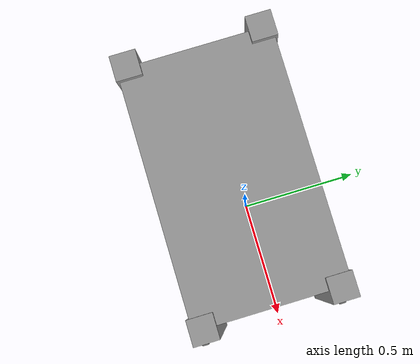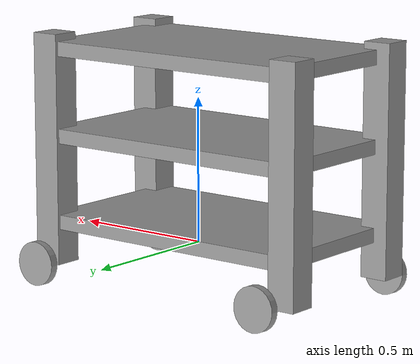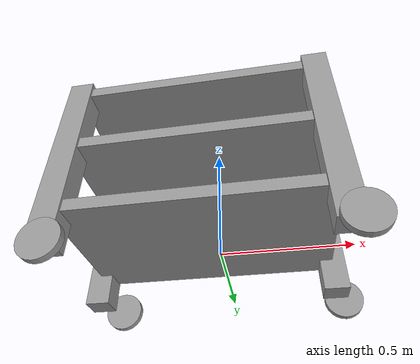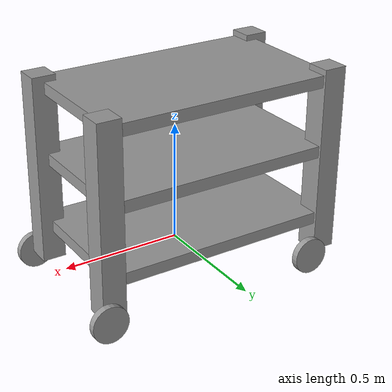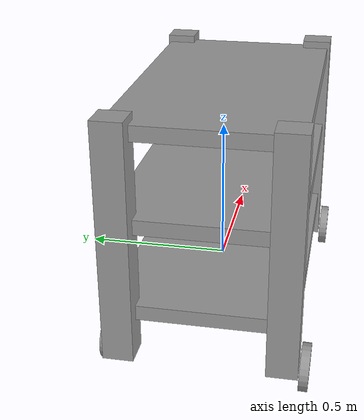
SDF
<?xml version='1.0'?>
<sdf version='1.6'>
  <model name='ER_cart6'>
    <link name='link_0_clone'>
      <pose frame=''>-0.060175 -0.026134 0.361383 0 -0 0</pose>
      <inertial>
        <mass>1</mass>
        <inertia>
          <ixx>0.166667</ixx>
          <ixy>0</ixy>
          <ixz>0</ixz>
          <iyy>0.166667</iyy>
          <iyz>0</iyz>
          <izz>0.166667</izz>
        </inertia>
        <pose frame=''>0 0 0 0 -0 0</pose>
      </inertial>
      <self_collide>0</self_collide>
      <kinematic>0</kinematic>
      <visual name='visual'>
        <pose frame=''>0 0 0.3 0 -0 0</pose>
        <geometry>
          <box>
            <size>1 0.6 0.05</size>
          </box>
        </geometry>
        <material>
          <lighting>1</lighting>
          <script>
            <uri>file://media/materials/scripts/gazebo.material</uri>
            <name>Gazebo/Grey</name>
          </script>
          <shader type='pixel'>
            <normal_map>__default__</normal_map>
          </shader>
          <ambient>0.3 0.3 0.3 1</ambient>
          <diffuse>0.7 0.7 0.7 1</diffuse>
          <specular>0.01 0.01 0.01 1</specular>
          <emissive>0 0 0 1</emissive>
        </material>
        <transparency>0</transparency>
        <cast_shadows>1</cast_shadows>
      </visual>
      <visual name='visual_5'>
        <pose frame=''>-0.5 -0.26 -0.05 0 -0 0</pose>
        <geometry>
          <box>
            <size>0.1 0.1 0.8</size>
          </box>
        </geometry>
        <material>
          <lighting>1</lighting>
          <script>
            <uri>file://media/materials/scripts/gazebo.material</uri>
            <name>Gazebo/Grey</name>
          </script>
          <shader type='pixel'>
            <normal_map>__default__</normal_map>
          </shader>
          <ambient>0.3 0.3 0.3 1</ambient>
          <diffuse>0.7 0.7 0.7 1</diffuse>
          <specular>0.01 0.01 0.01 1</specular>
          <emissive>0 0 0 1</emissive>
        </material>
        <transparency>0</transparency>
        <cast_shadows>1</cast_shadows>
      </visual>
      <visual name='visual_6'>
        <pose frame=''>-0.5 0.26 -0.05 0 -0 0</pose>
        <geometry>
          <box>
            <size>0.1 0.1 0.8</size>
          </box>
        </geometry>
        <material>
          <lighting>1</lighting>
          <script>
            <uri>file://media/materials/scripts/gazebo.material</uri>
            <name>Gazebo/Grey</name>
          </script>
          <shader type='pixel'>
            <normal_map>__default__</normal_map>
          </shader>
          <ambient>0.3 0.3 0.3 1</ambient>
          <diffuse>0.7 0.7 0.7 1</diffuse>
          <specular>0.01 0.01 0.01 1</specular>
          <emissive>0 0 0 1</emissive>
        </material>
        <transparency>0</transparency>
        <cast_shadows>1</cast_shadows>
      </visual>
      <visual name='visual_4'>
        <pose frame=''>0.5 -0.26 -0.05 0 -0 0</pose>
        <geometry>
          <box>
            <size>0.1 0.1 0.8</size>
          </box>
        </geometry>
        <material>
          <lighting>1</lighting>
          <script>
            <uri>file://media/materials/scripts/gazebo.material</uri>
            <name>Gazebo/Grey</name>
          </script>
          <shader type='pixel'>
            <normal_map>__default__</normal_map>
          </shader>
          <ambient>0.3 0.3 0.3 1</ambient>
          <diffuse>0.7 0.7 0.7 1</diffuse>
          <specular>0.01 0.01 0.01 1</specular>
          <emissive>0 0 0 1</emissive>
        </material>
        <transparency>0</transparency>
        <cast_shadows>1</cast_shadows>
      </visual>
      <visual name='visual_3'>
        <pose frame=''>0.5 0.26 -0.05 0 -0 0</pose>
        <geometry>
          <box>
            <size>0.1 0.1 0.8</size>
          </box>
        </geometry>
        <material>
          <lighting>1</lighting>
          <script>
            <uri>file://media/materials/scripts/gazebo.material</uri>
            <name>Gazebo/Grey</name>
          </script>
          <shader type='pixel'>
            <normal_map>__default__</normal_map>
          </shader>
          <ambient>0.3 0.3 0.3 1</ambient>
          <diffuse>0.7 0.7 0.7 1</diffuse>
          <specular>0.01 0.01 0.01 1</specular>
          <emissive>0 0 0 1</emissive>
        </material>
        <transparency>0</transparency>
        <cast_shadows>1</cast_shadows>
      </visual>
      <visual name='visual_1'>
        <pose frame=''>0 0 0 0 -0 0</pose>
        <geometry>
          <box>
            <size>1 0.6 0.05</size>
          </box>
        </geometry>
        <material>
          <lighting>1</lighting>
          <script>
            <uri>file://media/materials/scripts/gazebo.material</uri>
            <name>Gazebo/Grey</name>
          </script>
          <shader type='pixel'>
            <normal_map>__default__</normal_map>
          </shader>
          <ambient>0.3 0.3 0.3 1</ambient>
          <diffuse>0.7 0.7 0.7 1</diffuse>
          <specular>0.01 0.01 0.01 1</specular>
          <emissive>0 0 0 1</emissive>
        </material>
        <transparency>0</transparency>
        <cast_shadows>1</cast_shadows>
      </visual>
      <visual name='visual_2'>
        <pose frame=''>0 0 -0.3 0 -0 0</pose>
        <geometry>
          <box>
            <size>1 0.6 0.05</size>
          </box>
        </geometry>
        <material>
          <lighting>1</lighting>
          <script>
            <uri>file://media/materials/scripts/gazebo.material</uri>
            <name>Gazebo/Grey</name>
          </script>
          <shader type='pixel'>
            <normal_map>__default__</normal_map>
          </shader>
          <ambient>0.3 0.3 0.3 1</ambient>
          <diffuse>0.7 0.7 0.7 1</diffuse>
          <specular>0.01 0.01 0.01 1</specular>
          <emissive>0 0 0 1</emissive>
        </material>
        <transparency>0</transparency>
        <cast_shadows>1</cast_shadows>
      </visual>
      <collision name='collision'>
        <laser_retro>0</laser_retro>
        <max_contacts>10</max_contacts>
        <pose frame=''>0 0 -0.05 0 -0 0</pose>
        <geometry>
          <box>
            <size>1 0.6 0.8</size>
          </box>
        </geometry>
        <surface>
          <friction>
            <ode>
              <mu>1</mu>
              <mu2>1</mu2>
              <fdir1>0 0 0</fdir1>
              <slip1>0</slip1>
              <slip2>0</slip2>
            </ode>
            <torsional>
              <coefficient>1</coefficient>
              <patch_radius>0</patch_radius>
              <surface_radius>0</surface_radius>
              <use_patch_radius>1</use_patch_radius>
              <ode>
                <slip>0</slip>
              </ode>
            </torsional>
          </friction>
          <bounce>
            <restitution_coefficient>0</restitution_coefficient>
            <threshold>1e+06</threshold>
          </bounce>
          <contact>
            <collide_without_contact>0</collide_without_contact>
            <collide_without_contact_bitmask>1</collide_without_contact_bitmask>
            <collide_bitmask>1</collide_bitmask>
            <ode>
              <soft_cfm>0</soft_cfm>
              <soft_erp>0.2</soft_erp>
              <kp>1e+13</kp>
              <kd>1</kd>
              <max_vel>0.01</max_vel>
              <min_depth>0</min_depth>
            </ode>
            <bullet>
              <split_impulse>1</split_impulse>
              <split_impulse_penetration_threshold>-0.01</split_impulse_penetration_threshold>
              <soft_cfm>0</soft_cfm>
              <soft_erp>0.2</soft_erp>
              <kp>1e+13</kp>
              <kd>1</kd>
            </bullet>
          </contact>
        </surface>
      </collision>
    </link>
    <link name='link_2_clone'>
      <pose frame=''>0.473113 0.2994 -0.09134 -1.54173 0 0</pose>
      <inertial>
        <mass>0.000687654</mass>
        <inertia>
          <ixx>1.06476e-06</ixx>
          <ixy>0</ixy>
          <ixz>0</ixz>
          <iyy>1.06476e-06</iyy>
          <iyz>0</iyz>
          <izz>2.03255e-06</izz>
        </inertia>
        <pose frame=''>0 0 0 0 -0 0</pose>
      </inertial>
      <self_collide>0</self_collide>
      <kinematic>0</kinematic>
      <visual name='visual'>
        <pose frame=''>0 0 0 0 -0 0</pose>
        <geometry>
          <cylinder>
            <radius>0.0768867</radius>
            <length>0.0290866</length>
          </cylinder>
        </geometry>
        <material>
          <lighting>1</lighting>
          <script>
            <uri>file://media/materials/scripts/gazebo.material</uri>
            <name>Gazebo/Grey</name>
          </script>
          <shader type='pixel'>
            <normal_map>__default__</normal_map>
          </shader>
          <ambient>0.3 0.3 0.3 1</ambient>
          <diffuse>0.7 0.7 0.7 1</diffuse>
          <specular>0.01 0.01 0.01 1</specular>
          <emissive>0 0 0 1</emissive>
        </material>
        <transparency>0</transparency>
        <cast_shadows>1</cast_shadows>
      </visual>
      <collision name='collision'>
        <laser_retro>0</laser_retro>
        <max_contacts>10</max_contacts>
        <pose frame=''>0 0 0 0 -0 0</pose>
        <geometry>
          <cylinder>
            <radius>0.076887</radius>
            <length>0.029087</length>
          </cylinder>
        </geometry>
        <surface>
          <friction>
            <ode>
              <mu>1</mu>
              <mu2>1</mu2>
              <fdir1>0 0 0</fdir1>
              <slip1>0</slip1>
              <slip2>0</slip2>
            </ode>
            <torsional>
              <coefficient>1</coefficient>
              <patch_radius>0</patch_radius>
              <surface_radius>0</surface_radius>
              <use_patch_radius>1</use_patch_radius>
              <ode>
                <slip>0</slip>
              </ode>
            </torsional>
          </friction>
          <bounce>
            <restitution_coefficient>0</restitution_coefficient>
            <threshold>1e+06</threshold>
          </bounce>
          <contact>
            <collide_without_contact>0</collide_without_contact>
            <collide_without_contact_bitmask>1</collide_without_contact_bitmask>
            <collide_bitmask>1</collide_bitmask>
            <ode>
              <soft_cfm>0</soft_cfm>
              <soft_erp>0.2</soft_erp>
              <kp>1e+13</kp>
              <kd>1</kd>
              <max_vel>0.01</max_vel>
              <min_depth>0</min_depth>
            </ode>
            <bullet>
              <split_impulse>1</split_impulse>
              <split_impulse_penetration_threshold>-0.01</split_impulse_penetration_threshold>
              <soft_cfm>0</soft_cfm>
              <soft_erp>0.2</soft_erp>
              <kp>1e+13</kp>
              <kd>1</kd>
            </bullet>
          </contact>
        </surface>
      </collision>
    </link>
    <link name='link_2_clone_clone_0'>
      <pose frame=''>-0.473113 0.2994 -0.09134 -1.54173 0 0</pose>
      <inertial>
        <mass>0.000687654</mass>
        <inertia>
          <ixx>1.06476e-06</ixx>
          <ixy>0</ixy>
          <ixz>0</ixz>
          <iyy>1.06476e-06</iyy>
          <iyz>0</iyz>
          <izz>2.03255e-06</izz>
        </inertia>
        <pose frame=''>0 0 0 0 -0 0</pose>
      </inertial>
      <self_collide>0</self_collide>
      <kinematic>0</kinematic>
      <visual name='visual'>
        <pose frame=''>0 0 0 0 -0 0</pose>
        <geometry>
          <cylinder>
            <radius>0.0768867</radius>
            <length>0.0290866</length>
          </cylinder>
        </geometry>
        <material>
          <lighting>1</lighting>
          <script>
            <uri>file://media/materials/scripts/gazebo.material</uri>
            <name>Gazebo/Grey</name>
          </script>
          <shader type='pixel'>
            <normal_map>__default__</normal_map>
          </shader>
          <ambient>0.3 0.3 0.3 1</ambient>
          <diffuse>0.7 0.7 0.7 1</diffuse>
          <specular>0.01 0.01 0.01 1</specular>
          <emissive>0 0 0 1</emissive>
        </material>
        <transparency>0</transparency>
        <cast_shadows>1</cast_shadows>
      </visual>
      <collision name='collision'>
        <laser_retro>0</laser_retro>
        <max_contacts>10</max_contacts>
        <pose frame=''>0 0 0 0 -0 0</pose>
        <geometry>
          <cylinder>
            <radius>0.076887</radius>
            <length>0.029087</length>
          </cylinder>
        </geometry>
        <surface>
          <friction>
            <ode>
              <mu>1</mu>
              <mu2>1</mu2>
              <fdir1>0 0 0</fdir1>
              <slip1>0</slip1>
              <slip2>0</slip2>
            </ode>
            <torsional>
              <coefficient>1</coefficient>
              <patch_radius>0</patch_radius>
              <surface_radius>0</surface_radius>
              <use_patch_radius>1</use_patch_radius>
              <ode>
                <slip>0</slip>
              </ode>
            </torsional>
          </friction>
          <bounce>
            <restitution_coefficient>0</restitution_coefficient>
            <threshold>1e+06</threshold>
          </bounce>
          <contact>
            <collide_without_contact>0</collide_without_contact>
            <collide_without_contact_bitmask>1</collide_without_contact_bitmask>
            <collide_bitmask>1</collide_bitmask>
            <ode>
              <soft_cfm>0</soft_cfm>
              <soft_erp>0.2</soft_erp>
              <kp>1e+13</kp>
              <kd>1</kd>
              <max_vel>0.01</max_vel>
              <min_depth>0</min_depth>
            </ode>
            <bullet>
              <split_impulse>1</split_impulse>
              <split_impulse_penetration_threshold>-0.01</split_impulse_penetration_threshold>
              <soft_cfm>0</soft_cfm>
              <soft_erp>0.2</soft_erp>
              <kp>1e+13</kp>
              <kd>1</kd>
            </bullet>
          </contact>
        </surface>
      </collision>
    </link>
    <link name='link_2_clone_clone_1'>
      <pose frame=''>0.473113 -0.354144 -0.09134 -1.54173 0 0</pose>
      <inertial>
        <mass>0.00068765</mass>
        <inertia>
          <ixx>1.06e-06</ixx>
          <ixy>0</ixy>
          <ixz>0</ixz>
          <iyy>1.06e-06</iyy>
          <iyz>0</iyz>
          <izz>2.03e-06</izz>
        </inertia>
        <pose frame=''>0 0 0 0 -0 0</pose>
      </inertial>
      <self_collide>0</self_collide>
      <kinematic>0</kinematic>
      <gravity>1</gravity>
      <visual name='visual'>
        <pose frame=''>0 0 0 0 -0 0</pose>
        <geometry>
          <cylinder>
            <radius>0.0768867</radius>
            <length>0.0290866</length>
          </cylinder>
        </geometry>
        <material>
          <lighting>1</lighting>
          <script>
            <uri>file://media/materials/scripts/gazebo.material</uri>
            <name>Gazebo/Grey</name>
          </script>
          <shader type='pixel'>
            <normal_map>__default__</normal_map>
          </shader>
          <ambient>0.3 0.3 0.3 1</ambient>
          <diffuse>0.7 0.7 0.7 1</diffuse>
          <specular>0.01 0.01 0.01 1</specular>
          <emissive>0 0 0 1</emissive>
        </material>
        <transparency>0</transparency>
        <cast_shadows>1</cast_shadows>
      </visual>
      <collision name='collision'>
        <laser_retro>0</laser_retro>
        <max_contacts>10</max_contacts>
        <pose frame=''>0 0 0 0 -0 0</pose>
        <geometry>
          <cylinder>
            <radius>0.076887</radius>
            <length>0.029087</length>
          </cylinder>
        </geometry>
        <surface>
          <friction>
            <ode>
              <mu>1</mu>
              <mu2>1</mu2>
              <fdir1>0 0 0</fdir1>
              <slip1>0</slip1>
              <slip2>0</slip2>
            </ode>
            <torsional>
              <coefficient>1</coefficient>
              <patch_radius>0</patch_radius>
              <surface_radius>0</surface_radius>
              <use_patch_radius>1</use_patch_radius>
              <ode>
                <slip>0</slip>
              </ode>
            </torsional>
          </friction>
          <bounce>
            <restitution_coefficient>0</restitution_coefficient>
            <threshold>1e+06</threshold>
          </bounce>
          <contact>
            <collide_without_contact>0</collide_without_contact>
            <collide_without_contact_bitmask>1</collide_without_contact_bitmask>
            <collide_bitmask>1</collide_bitmask>
            <ode>
              <soft_cfm>0</soft_cfm>
              <soft_erp>0.2</soft_erp>
              <kp>1e+13</kp>
              <kd>1</kd>
              <max_vel>0.01</max_vel>
              <min_depth>0</min_depth>
            </ode>
            <bullet>
              <split_impulse>1</split_impulse>
              <split_impulse_penetration_threshold>-0.01</split_impulse_penetration_threshold>
              <soft_cfm>0</soft_cfm>
              <soft_erp>0.2</soft_erp>
              <kp>1e+13</kp>
              <kd>1</kd>
            </bullet>
          </contact>
        </surface>
      </collision>
    </link>
    <link name='link_2_clone_clone_clone'>
      <pose frame=''>-0.533288 -0.352906 -0.09134 -1.54173 0 0</pose>
      <inertial>
        <mass>0.00068765</mass>
        <inertia>
          <ixx>1.06e-06</ixx>
          <ixy>0</ixy>
          <ixz>0</ixz>
          <iyy>1.06e-06</iyy>
          <iyz>0</iyz>
          <izz>2.03e-06</izz>
        </inertia>
        <pose frame=''>0 0 0 0 -0 0</pose>
      </inertial>
      <self_collide>0</self_collide>
      <kinematic>0</kinematic>
      <visual name='visual'>
        <pose frame=''>0 0 0 0 -0 0</pose>
        <geometry>
          <cylinder>
            <radius>0.0768867</radius>
            <length>0.0290866</length>
          </cylinder>
        </geometry>
        <material>
          <lighting>1</lighting>
          <script>
            <uri>file://media/materials/scripts/gazebo.material</uri>
            <name>Gazebo/Grey</name>
          </script>
          <shader type='pixel'>
            <normal_map>__default__</normal_map>
          </shader>
          <ambient>0.3 0.3 0.3 1</ambient>
          <diffuse>0.7 0.7 0.7 1</diffuse>
          <specular>0.01 0.01 0.01 1</specular>
          <emissive>0 0 0 1</emissive>
        </material>
        <transparency>0</transparency>
        <cast_shadows>1</cast_shadows>
      </visual>
      <collision name='collision'>
        <laser_retro>0</laser_retro>
        <max_contacts>10</max_contacts>
        <pose frame=''>0 0 0 0 -0 0</pose>
        <geometry>
          <cylinder>
            <radius>0.076887</radius>
            <length>0.029087</length>
          </cylinder>
        </geometry>
        <surface>
          <friction>
            <ode>
              <mu>1</mu>
              <mu2>1</mu2>
              <fdir1>0 0 0</fdir1>
              <slip1>0</slip1>
              <slip2>0</slip2>
            </ode>
            <torsional>
              <coefficient>1</coefficient>
              <patch_radius>0</patch_radius>
              <surface_radius>0</surface_radius>
              <use_patch_radius>1</use_patch_radius>
              <ode>
                <slip>0</slip>
              </ode>
            </torsional>
          </friction>
          <bounce>
            <restitution_coefficient>0</restitution_coefficient>
            <threshold>1e+06</threshold>
          </bounce>
          <contact>
            <collide_without_contact>0</collide_without_contact>
            <collide_without_contact_bitmask>1</collide_without_contact_bitmask>
            <collide_bitmask>1</collide_bitmask>
            <ode>
              <soft_cfm>0</soft_cfm>
              <soft_erp>0.2</soft_erp>
              <kp>1e+13</kp>
              <kd>1</kd>
              <max_vel>0.01</max_vel>
              <min_depth>0</min_depth>
            </ode>
            <bullet>
              <split_impulse>1</split_impulse>
              <split_impulse_penetration_threshold>-0.01</split_impulse_penetration_threshold>
              <soft_cfm>0</soft_cfm>
              <soft_erp>0.2</soft_erp>
              <kp>1e+13</kp>
              <kd>1</kd>
            </bullet>
          </contact>
        </surface>
      </collision>
    </link>
    <joint name='link_0_clone_JOINT_2' type='revolute'>
      <parent>link_0_clone</parent>
      <child>link_2_clone_clone_0</child>
      <pose frame=''>0 0 0 0 -0 0</pose>
      <axis>
        <xyz>0 0 1</xyz>
        <use_parent_model_frame>0</use_parent_model_frame>
        <limit>
          <lower>-1.79769e+308</lower>
          <upper>1.79769e+308</upper>
          <effort>-1</effort>
          <velocity>-1</velocity>
        </limit>
        <dynamics>
          <spring_reference>0</spring_reference>
          <spring_stiffness>0</spring_stiffness>
          <damping>0</damping>
          <friction>0</friction>
        </dynamics>
      </axis>
      <physics>
        <ode>
          <limit>
            <cfm>0</cfm>
            <erp>0.2</erp>
          </limit>
          <suspension>
            <cfm>0</cfm>
            <erp>0.2</erp>
          </suspension>
        </ode>
      </physics>
    </joint>
    <joint name='link_0_clone_JOINT_3' type='revolute'>
      <parent>link_0_clone</parent>
      <child>link_2_clone_clone_1</child>
      <pose frame=''>0 0 0 0 -0 0</pose>
      <axis>
        <xyz>0 0 1</xyz>
        <use_parent_model_frame>0</use_parent_model_frame>
        <limit>
          <lower>-1.79769e+308</lower>
          <upper>1.79769e+308</upper>
          <effort>-1</effort>
          <velocity>-1</velocity>
        </limit>
        <dynamics>
          <spring_reference>0</spring_reference>
          <spring_stiffness>0</spring_stiffness>
          <damping>0</damping>
          <friction>0</friction>
        </dynamics>
      </axis>
      <physics>
        <ode>
          <limit>
            <cfm>0</cfm>
            <erp>0.2</erp>
          </limit>
          <suspension>
            <cfm>0</cfm>
            <erp>0.2</erp>
          </suspension>
        </ode>
      </physics>
    </joint>
    <joint name='link_0_clone_JOINT_4' type='revolute'>
      <parent>link_0_clone</parent>
      <child>link_2_clone</child>
      <pose frame=''>0 0 0 0 -0 0</pose>
      <axis>
        <xyz>0 0 1</xyz>
        <use_parent_model_frame>0</use_parent_model_frame>
        <limit>
          <lower>-1.79769e+308</lower>
          <upper>1.79769e+308</upper>
          <effort>-1</effort>
          <velocity>-1</velocity>
        </limit>
        <dynamics>
          <spring_reference>0</spring_reference>
          <spring_stiffness>0</spring_stiffness>
          <damping>0</damping>
          <friction>0</friction>
        </dynamics>
      </axis>
      <physics>
        <ode>
          <limit>
            <cfm>0</cfm>
            <erp>0.2</erp>
          </limit>
          <suspension>
            <cfm>0</cfm>
            <erp>0.2</erp>
          </suspension>
        </ode>
      </physics>
    </joint>
    <joint name='link_0_clone_JOINT_6' type='revolute'>
      <parent>link_0_clone</parent>
      <child>link_2_clone_clone_clone</child>
      <pose frame=''>0 0 0 0 -0 0</pose>
      <axis>
        <xyz>0 0 1</xyz>
        <use_parent_model_frame>0</use_parent_model_frame>
        <limit>
          <lower>-1.79769e+308</lower>
          <upper>1.79769e+308</upper>
          <effort>-1</effort>
          <velocity>-1</velocity>
        </limit>
        <dynamics>
          <spring_reference>0</spring_reference>
          <spring_stiffness>0</spring_stiffness>
          <damping>0</damping>
          <friction>0</friction>
        </dynamics>
      </axis>
      <physics>
        <ode>
          <limit>
            <cfm>0</cfm>
            <erp>0.2</erp>
          </limit>
          <suspension>
            <cfm>0</cfm>
            <erp>0.2</erp>
          </suspension>
        </ode>
      </physics>
    </joint>
    <static>0</static>
    <allow_auto_disable>1</allow_auto_disable>
  </model>
</sdf>
